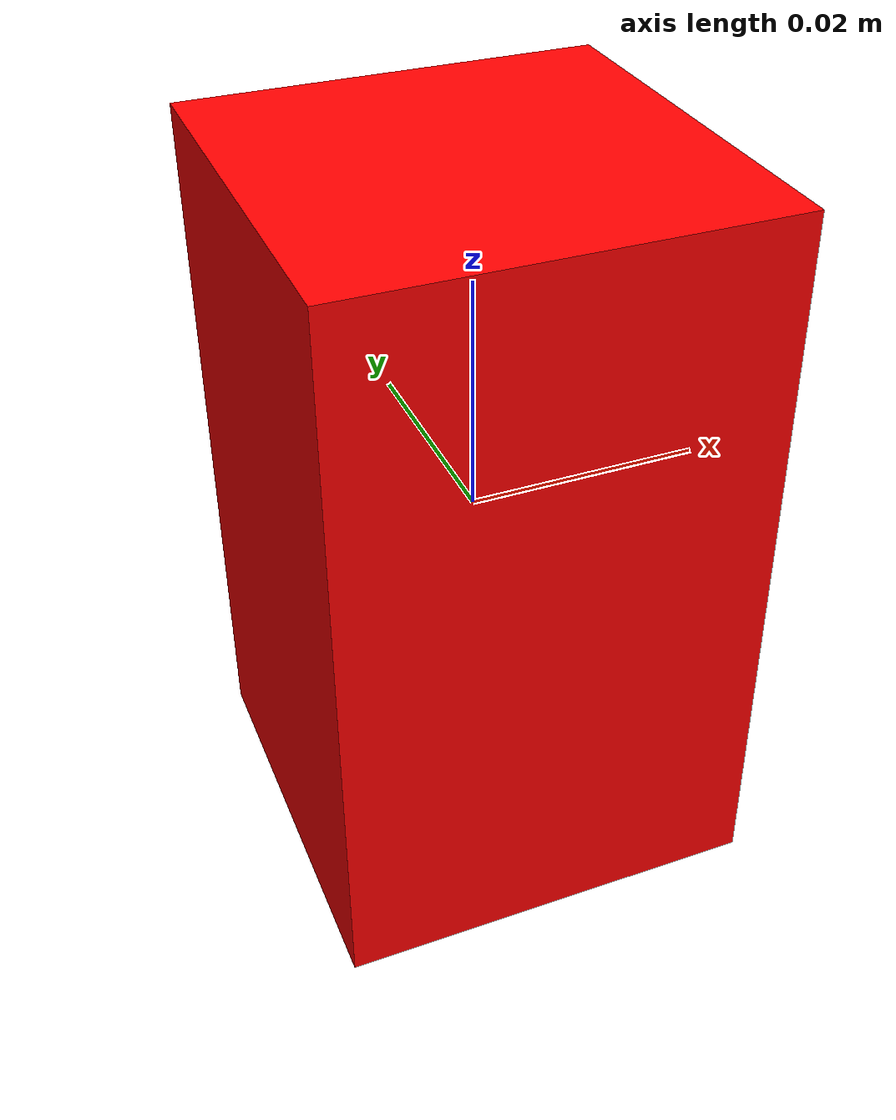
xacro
<?xml version="1.0"?>
<robot name='redbox'>
  <material name="red">
    <color rgba="1.0 0.0 0.0 1.0"/>
  </material>
    <link name="world_link"/>
    <joint name="red_box_joint" type="fixed">
      <parent link="world_link"/>
      <child link="red_box"/>
    </joint>

    <link name="red_box">
      <visual>
        <origin xyz="0.0 0.0 0.0" rpy="0.0 0.0 0.0"/>
        <geometry>
          <box size="0.035 0.035 0.06"/>
        </geometry>
        <material name="red">

        </material>
      </visual>
      <collision>
        <origin xyz="0.0 0.0 0.0" rpy="0.0 0.0 0.0"/>
        <geometry>
          <box size="0.035 0.035 0.06"/>
        </geometry>
      </collision>
      <inertial>
        <origin xyz="0.0 0.0 0.0" rpy="0.0 0.0 0.0"/>
        <mass value="0.200"/>
        <inertia ixx="0.001" ixy="0.0" ixz="0.0" iyy="0.001" iyz="0.0" izz="0.001"/>
      </inertial>
    </link>

    <gazebo reference="red_box">
        <material>Gazebo/Red</material>
        <mu1>5</mu1>
        <mu2>5</mu2>
    </gazebo>
</robot>
